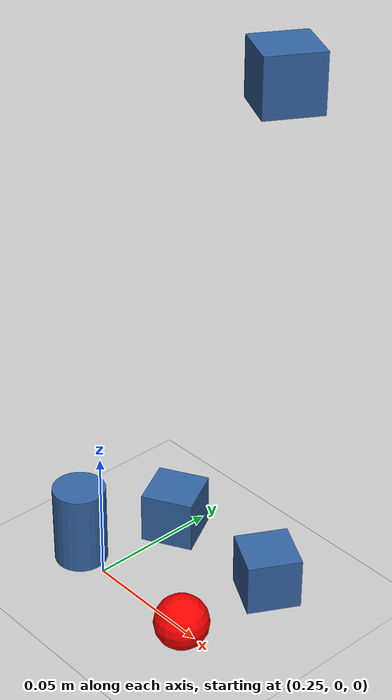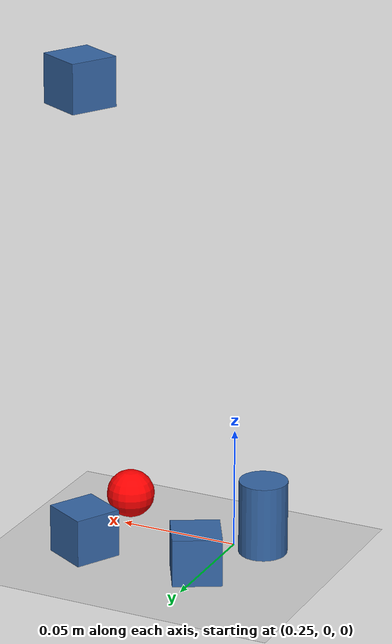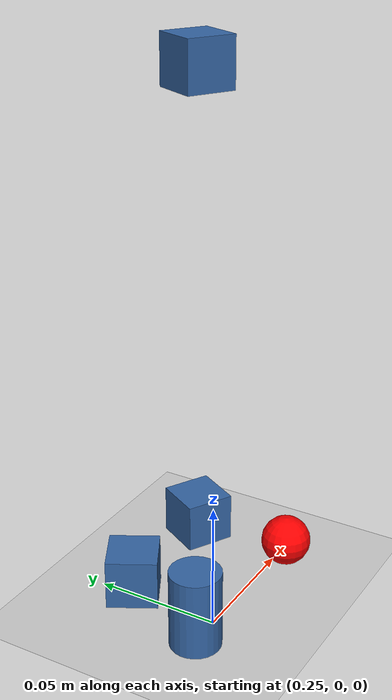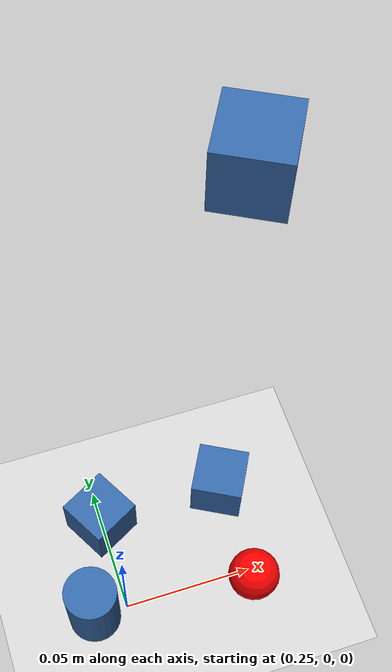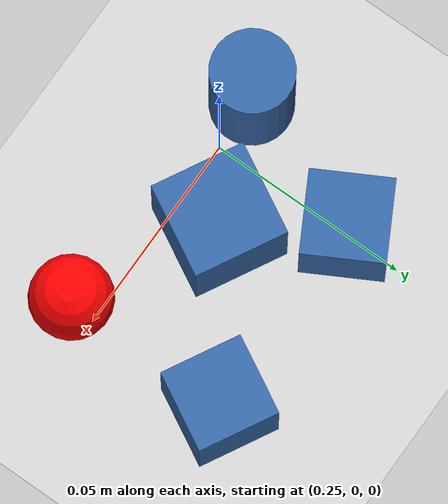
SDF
<sdf version="1.6">
 <world name="default">
  <include><uri>model://sun</uri></include>
  <include><uri>model://ground_plane</uri></include>
  <model name="cube_blue">
   <include><uri>model://cube_blue</uri></include>
   <pose>0.25 0.0357 0.011 0.0 0.0 0.5</pose>
  </model>
  <model name="cube_blue_2">
   <include><uri>model://cube_blue</uri></include>
   <pose>0.30 0.0357 0.011 0.0 0.0 -0.5</pose>
  </model>
  <model name="cube_blue_2">
   <include><uri>model://cube_blue</uri></include>
   <pose>0.30 0.0357 0.2 0.0 0.0 -0.5</pose>
  </model>
  <model name="cube_blue_3">
   <include><uri>model://ball</uri></include>
   <pose>0.30 -0.0057 0.011 0.0 0.0 -0.7</pose>
  </model>
  <model name="cylinder_blue">
   <include><uri>model://cylinder</uri></include>
   <pose>0.237 -0.0 0.011 0.0 0.0 0.2</pose>
  </model>
 </world>
</sdf>

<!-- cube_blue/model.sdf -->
<sdf version='1.6'>
  <model name='cube_blue'>
    <link name='link_1'>
      <inertial>
        <mass>1e-4</mass>
        <inertia>
          <ixx>1.0e-8</ixx>
          <ixy>0</ixy>
          <ixz>0</ixz>
          <iyy>1.0e-8</iyy>
          <iyz>0</iyz>
          <izz>1.0e-8</izz>
        </inertia>
        <pose frame=''>0 0 0 0 -0 0</pose>
      </inertial>
      <pose frame=''>0 0 0 0 -0 0</pose>
      <gravity>1</gravity>
      <self_collide>1</self_collide>
      <kinematic>0</kinematic>
      <enable_wind>0</enable_wind>
      <visual name='visual'>
        <pose frame=''>0 0 0 0 -0 0</pose>
        <geometry>
          <box>
            <size>0.02 0.02 0.02</size>
          </box>
        </geometry>
        <material>
          <lighting>1</lighting>
          <script>
            <uri>file://media/materials/scripts/gazebo.material</uri>
            <name>Gazebo/Grey</name>
          </script>
          <shader type='vertex'>
            <normal_map>__default__</normal_map>
          </shader>
          <ambient>0.204 0.396 0.643 1</ambient>
          <diffuse>0.204 0.396 0.643 1</diffuse>
          <specular>0.333 0.341 0.325 1</specular>
          <emissive>0 0 0 1</emissive>
        </material>
        <transparency>0</transparency>
        <cast_shadows>1</cast_shadows>
      </visual>
      <collision name='collision'>
        <laser_retro>0</laser_retro>
        <max_contacts>50</max_contacts>
        <pose frame=''>0 0 0 0 -0 0</pose>
        <geometry>
          <box>
            <size>0.02 0.02 0.02</size>
          </box>
        </geometry>
        <surface>
          <friction>
            <ode>
              <mu>1e6</mu>
              <mu2>1e4</mu2>
            </ode>
            <torsional>
              <coefficient>1</coefficient>
              <patch_radius>0</patch_radius>
              <surface_radius>0</surface_radius>
              <use_patch_radius>1</use_patch_radius>
            </torsional>
          </friction>
          <bounce>
            <restitution_coefficient>0</restitution_coefficient>
            <threshold>1e+06</threshold>
          </bounce>
          <contact>
            <collide_without_contact>0</collide_without_contact>
            <collide_without_contact_bitmask>1</collide_without_contact_bitmask>
            <collide_bitmask>1</collide_bitmask>
            <ode>
              <soft_cfm>0</soft_cfm>
              <soft_erp>0.2</soft_erp>
              <kp>1e+13</kp>
              <kd>1</kd>
              <max_vel>0.0</max_vel>
              <min_depth>0.002</min_depth>
            </ode>
            <bullet>
              <split_impulse>1</split_impulse>
              <split_impulse_penetration_threshold>-0.01</split_impulse_penetration_threshold>
              <soft_cfm>0</soft_cfm>
              <soft_erp>0.2</soft_erp>
              <kp>1e+13</kp>
              <kd>1</kd>
            </bullet>
          </contact>
        </surface>
      </collision>
    </link>
    <static>0</static>
    <allow_auto_disable>1</allow_auto_disable>
  </model>
</sdf>

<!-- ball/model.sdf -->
<sdf version="1.6">
  <model name="ball">
    <static>false</static>
    <link name="link">
      <inertial>
        <mass>1e-4</mass>
        <inertia>
          <ixx>0.01</ixx>
          <iyy>0.01</iyy>
          <izz>0.01</izz>
        </inertia>
      </inertial>
      <collision name="collision">
        <geometry>
          <sphere>
            <radius>0.01</radius>
          </sphere>
        </geometry>
	<material>
          <lighting>1</lighting>
          <script>
            <uri>file://media/materials/scripts/gazebo.material</uri>
            <name>Gazebo/Grey</name>
          </script>
          <shader type='vertex'>
            <normal_map>__default__</normal_map>
          </shader>
          <ambient>0.204 0.396 0.643 1</ambient>
          <diffuse>0.204 0.396 0.643 1</diffuse>
          <specular>0.333 0.341 0.325 1</specular>
          <emissive>0 0 0 1</emissive>
        </material>
      </collision>
      <visual name="visual">
        <geometry>
          <sphere>
            <radius>0.01</radius>
          </sphere>
        </geometry>
        <material>
          <ambient>1 0 0 1</ambient>
          <diffuse>1 0 0 1</diffuse>
        </material>
      </visual>
	<collision name='collision'>
        <laser_retro>0</laser_retro>
        <max_contacts>50</max_contacts>
        <pose frame=''>0 0 0 0 -0 0</pose>
        <geometry>
          <box>
            <size>0.02 0.02 0.02</size>
          </box>
        </geometry>
        <surface>
          <friction>
            <ode>
              <mu>1e6</mu>
              <mu2>1e4</mu2>
            </ode>
            <torsional>
              <coefficient>1</coefficient>
              <patch_radius>0</patch_radius>
              <surface_radius>0</surface_radius>
              <use_patch_radius>1</use_patch_radius>
            </torsional>
          </friction>
          <bounce>
            <restitution_coefficient>0</restitution_coefficient>
            <threshold>1e+06</threshold>
          </bounce>
          <contact>
            <collide_without_contact>0</collide_without_contact>
            <collide_without_contact_bitmask>1</collide_without_contact_bitmask>
            <collide_bitmask>1</collide_bitmask>
            <ode>
              <soft_cfm>0</soft_cfm>
              <soft_erp>0.2</soft_erp>
              <kp>1e+13</kp>
              <kd>1</kd>
              <max_vel>0.0</max_vel>
              <min_depth>0.002</min_depth>
            </ode>
            <bullet>
              <split_impulse>1</split_impulse>
              <split_impulse_penetration_threshold>-0.01</split_impulse_penetration_threshold>
              <soft_cfm>0</soft_cfm>
              <soft_erp>0.2</soft_erp>
              <kp>1e+13</kp>
              <kd>1</kd>
            </bullet>
          </contact>
        </surface>
      </collision>
    </link>
  </model>
</sdf>

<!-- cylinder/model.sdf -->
<sdf version='1.6'>
  <model name='cylinder'>
    <link name='link_2'>
      <inertial>
        <mass>1e-4</mass>
        <inertia>
          <ixx>1.0e-8</ixx>
          <ixy>0</ixy>
          <ixz>0</ixz>
          <iyy>1.0e-8</iyy>
          <iyz>0</iyz>
          <izz>1.0e-8</izz>
        </inertia>
        <pose frame=''>0 0 0 0 -0 0</pose>
      </inertial>
      <pose frame=''>0 0 0 0 -0 0</pose>
      <gravity>1</gravity>
      <self_collide>1</self_collide>
      <kinematic>0</kinematic>
      <enable_wind>0</enable_wind>
      <visual name='visual'>
        <pose frame=''>0 0 0 0 -0 0</pose>
        <geometry>
          <cylinder>
            <radius>0.01</radius>
            <length>0.04</length>
          </cylinder>
        </geometry>
        <material>
          <lighting>1</lighting>
          <script>
            <uri>file://media/materials/scripts/gazebo.material</uri>
            <name>Gazebo/Grey</name>
          </script>
          <shader type='vertex'>
            <normal_map>__default__</normal_map>
          </shader>
          <ambient>0.204 0.396 0.643 1</ambient>
          <diffuse>0.204 0.396 0.643 1</diffuse>
          <specular>0.333 0.341 0.325 1</specular>
          <emissive>0 0 0 1</emissive>
        </material>
        <transparency>0</transparency>
        <cast_shadows>1</cast_shadows>
      </visual>
      <collision name='collision'>
        <laser_retro>0</laser_retro>
        <max_contacts>50</max_contacts>
        <pose frame=''>0 0 0 0 -0 0</pose>
        <geometry>
          <cylinder>
        <radius>0.01</radius> <length>0.04</length>
      </cylinder>
        </geometry>
        <surface>
          <friction>
            <ode>
              <mu>1e6</mu>
              <mu2>1e4</mu2>
            </ode>
            <torsional>
              <coefficient>1</coefficient>
              <patch_radius>0</patch_radius>
              <surface_radius>0</surface_radius>
              <use_patch_radius>1</use_patch_radius>
            </torsional>
          </friction>
          <bounce>
            <restitution_coefficient>0</restitution_coefficient>
            <threshold>1e+06</threshold>
          </bounce>
          <contact>
            <collide_without_contact>0</collide_without_contact>
            <collide_without_contact_bitmask>1</collide_without_contact_bitmask>
            <collide_bitmask>1</collide_bitmask>
            <ode>
              <soft_cfm>0</soft_cfm>
              <soft_erp>0.2</soft_erp>
              <kp>1e+13</kp>
              <kd>1</kd>
              <max_vel>0.0</max_vel>
              <min_depth>0.002</min_depth>
            </ode>
            <bullet>
              <split_impulse>1</split_impulse>
              <split_impulse_penetration_threshold>-0.01</split_impulse_penetration_threshold>
              <soft_cfm>0</soft_cfm>
              <soft_erp>0.2</soft_erp>
              <kp>1e+13</kp>
              <kd>1</kd>
            </bullet>
          </contact>
        </surface>
      </collision>
    </link>
    <static>0</static>
    <allow_auto_disable>1</allow_auto_disable>
  </model>
</sdf>
